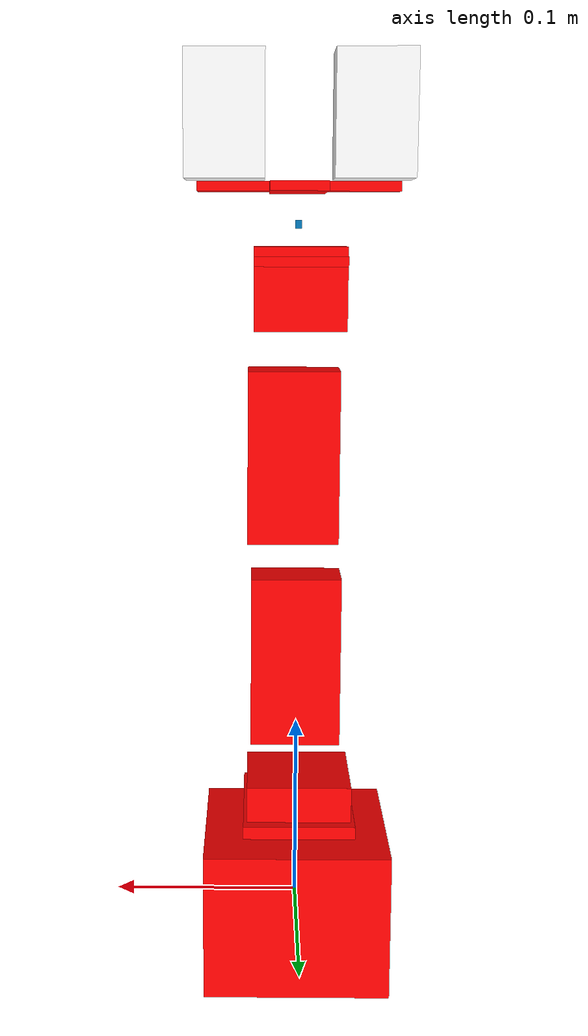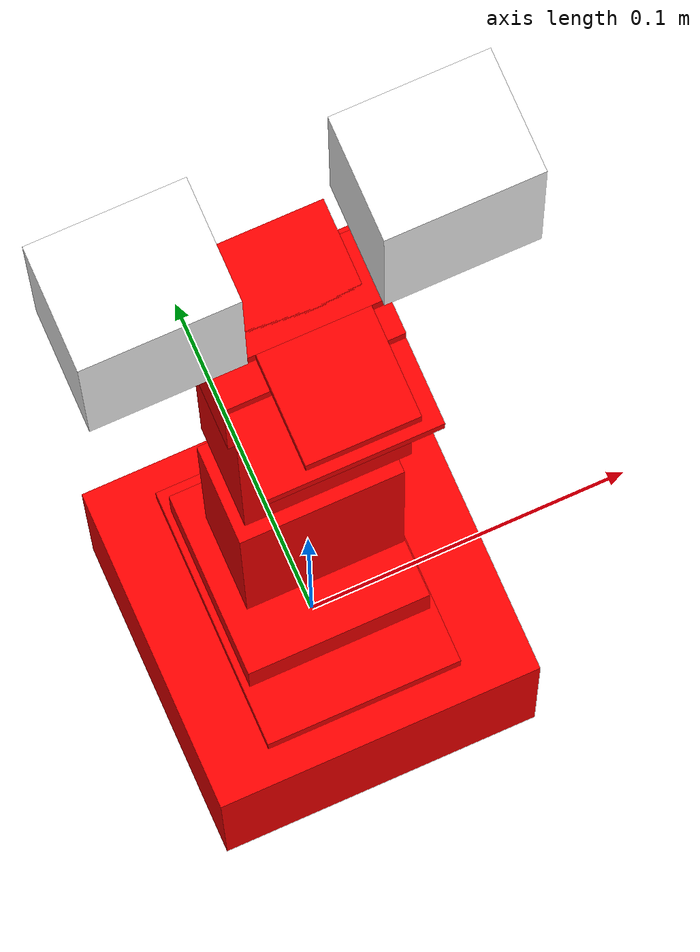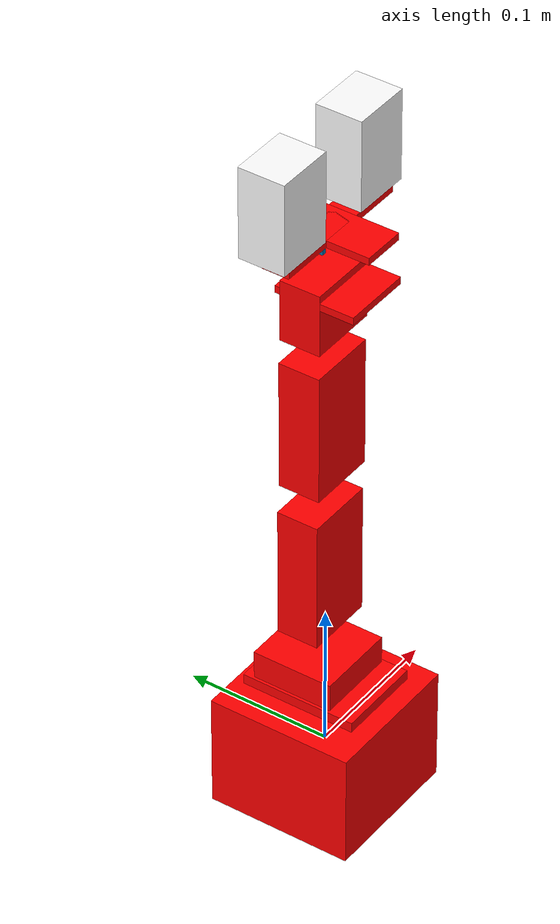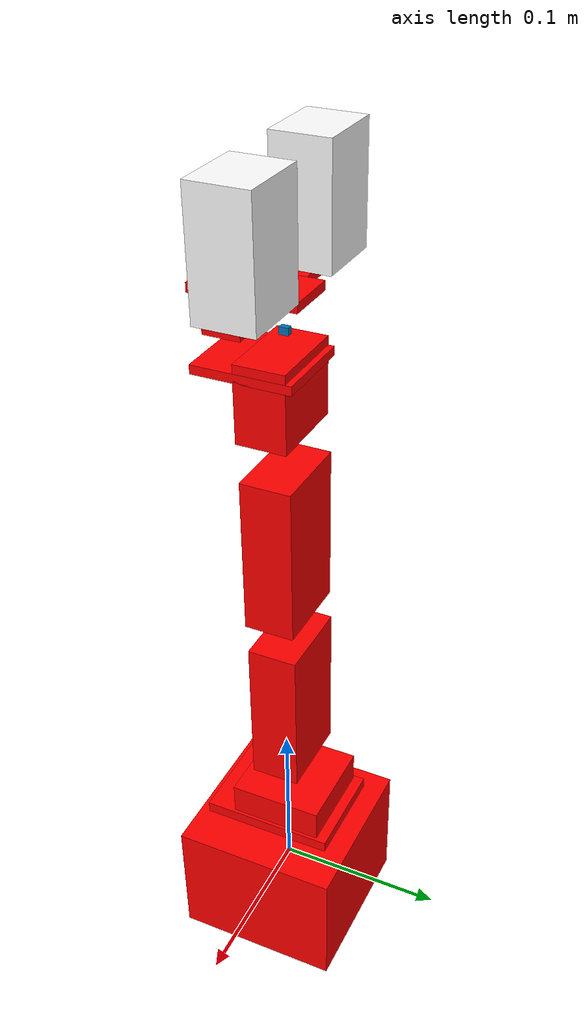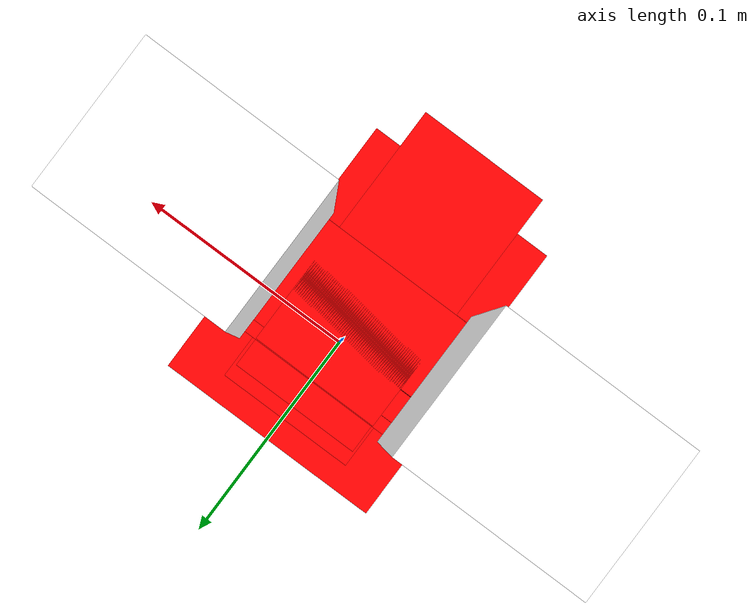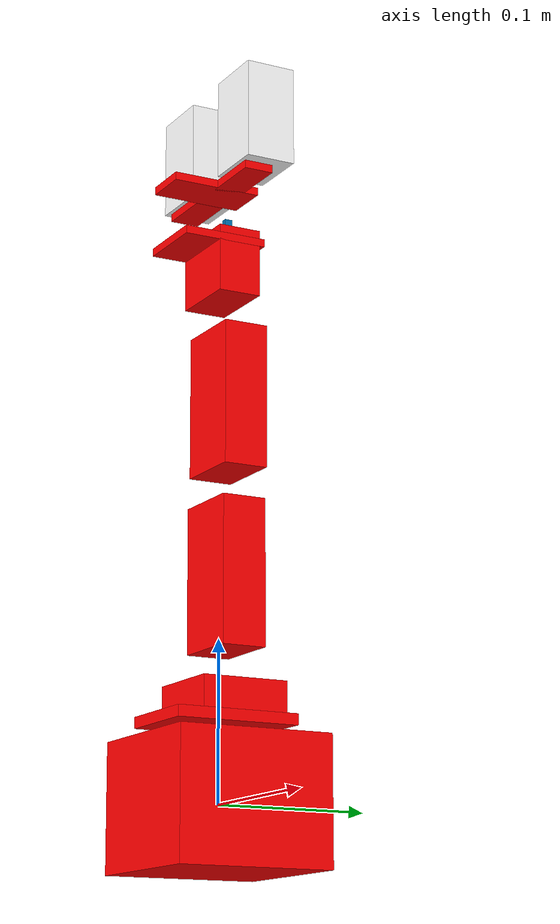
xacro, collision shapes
<?xml version="1.0"?>

<robot xmlns:xacro="http://www.ros.org/wiki/xacro" name="arm">

  <xacro:include filename="$(find arm_description)/urdf/arm_hardware_interface.xacro" />
  <xacro:include filename="$(find arm_gazebo)/urdf/arm_camera.xacro" />

  <material name="red">
    <color rgba="1 0 0 1"/>
  </material>
    <material name="white">
    <color rgba="1 1 1 1"/>
  </material>

 <link name="base_link">
    <visual>
      <geometry>
        <mesh filename="package://arm_description/meshes/base_link.stl" scale="0.001 0.001 0.001"/>
      </geometry>
      <origin rpy="0 0 0" xyz="0 0 0"/>
      <material name="red"/>
    </visual>
    <collision>
      <geometry>
        <box size = "0.1 0.1 0.08" />
      </geometry>
      <origin rpy="0 0 0" xyz="0 0 0"/>
    </collision>
    <inertial>
      <mass value="0.1"/>
      <inertia ixx="1.06682889e+08" ixy="0.0" ixz="0.0" iyy="9.92165844e+07" iyz="0.0" izz="1.26939175e+08"/>
    </inertial>
  </link>

  <joint name="base_1_2" type="fixed">
    <parent link="base_link"/>
    <child link="base_turn"/>
    <origin xyz="-0.0011 -0.011 0.05"/>
  </joint>

  <link name="base_turn">
    <visual>
      <geometry>
        <mesh filename="package://arm_description/meshes/base_turn.stl" scale="0.001 0.001 0.001"/>
      </geometry>
      <origin rpy="0 0 0" xyz="0 0 0"/>
      <material name="red"/>
    </visual>
    <collision>
      <geometry>
        <box size = "0.06 0.08 0.007" />
        </geometry>
      <origin rpy="0 0 0" xyz="0 0.01 0"/>
    </collision>
    <inertial>
      <mass value="0.1"/>
      <inertia ixx="1.35223008e+07" ixy="0.0" ixz="0.0" iyy="8.13814925e+06" iyz="0.0" izz="2.14903814e+07"/>
    </inertial>
  </link>

  <joint name="j0" type="revolute">
    <parent link="base_turn"/>
    <child link="base_turn_rot"/>
    <origin xyz="-0.0 0.0155 0.013" rpy = "0 0 -1.57"/>
    <axis xyz="0 0 1" />
    <limit effort="300" velocity="0.1" lower="-2.57" upper="2.57"/>
  </joint>

  <link name="base_turn_rot">
    <visual>
      <geometry>
        <mesh filename="package://arm_description/meshes/base_turn_table_rot.stl" scale="0.001 0.001 0.001"/>
      </geometry>
      <material name="red"/>
    </visual>
    <collision>
      <geometry>
          <box size = "0.056 0.056 0.02" />
        </geometry>
      <origin rpy="0 0 0" xyz="0 0 0"/>
    </collision>

    <inertial>
      <mass value="0.1"/>
      <inertia ixx="0.001" ixy="0.0" ixz="0.0" iyy="0.001" iyz="0.0" izz="0.001"/>
    </inertial>
  </link>

  <joint name="base_turn_rot_dyn2" type="fixed">
    <parent link="base_turn_rot"/>
    <child link="dyn2"/>
    <origin xyz="0 0 0.0385" rpy="0 1.57 1.57 "/>
  </joint>

  <link name="dyn2">
    <visual>
      <geometry>
        <mesh filename="package://arm_description/meshes/dyn.stl" scale="0.01 0.01 0.01"/>
      </geometry>

      <origin rpy="0 0 0" xyz="0 0 0"/>
    </visual>
    <collision>
      <geometry>
          <box size = "0.005 0.0032 0.004" />
        </geometry>
      <origin rpy="0 0 0" xyz="0 0 0"/>
    </collision>
     <inertial>
      <mass value="0.1"/>
      <inertia ixx="6.90013881e-05" ixy="0.0" ixz="0.0" iyy="1.24554875e-04" iyz="0.0" izz="1.04295793e-04"/>
    </inertial>
  </link>

  <joint name="j1" type="revolute">
    <parent link="dyn2"/>
    <child link="dyn2_r"/>
    <origin xyz="0 0 0.0" rpy="0 0 0"/>
    <axis xyz="0 0 1" />
    <limit effort="300" velocity="0.1" lower="-3.14" upper="3.14"/>
  </joint>

  <link name="dyn2_r">

  </link>

  <joint name="dyn2_f4" type="fixed">
    <parent link="dyn2_r"/>
    <child link="f4"/>
    <origin xyz="-0.047 0.0 -0.003" rpy="0 1.57 1.57"/>
  </joint>

  <link name="f4">
    <visual>
      <geometry>
        <mesh filename="package://arm_description/meshes/f4_n_f3.stl" scale="0.001 0.001 0.001"/>
      </geometry>
      <origin rpy="0 0 0" xyz="0 0 0"/>
      <material name="red"/>
    </visual>
    <collision>
      <geometry>
           <box size = "0.048 0.092 0.0287" />
        </geometry>
      <origin rpy="0 0 0" xyz="-0.005 -0.01 0"/>
    </collision>
     <inertial>
      <mass value="0.1"/>
      <inertia ixx="6.90013881e-05" ixy="0.0" ixz="0.0" iyy="1.24554875e-04" iyz="0.0" izz="1.04295793e-04"/>
    </inertial>
  </link>

  <joint name="d4_dyn3" type="fixed">
    <parent link="f4"/>
    <child link="dyn3"/>
    <origin xyz="-0.004 0.0645 0 " rpy="-1.57 3.14 1.57"/>
  </joint>

  <link name="dyn3">
    <visual>
      <geometry>
        <mesh filename="package://arm_description/meshes/dyn.stl" scale="0.01 0.01 0.01"/>
      </geometry>
      <origin rpy="0 0 0" xyz="0 0 0"/>
    </visual>
    <collision>
      <geometry>
          <box size = "0.005 0.004 0.004" />
        </geometry>
      <origin rpy="0 0 0" xyz="0 0 0"/>
    </collision>
     <inertial>
      <mass value="0.1"/>
      <inertia ixx="6.90013881e-05" ixy="0.0" ixz="0.0" iyy="1.24554875e-04" iyz="0.0" izz="1.04295793e-04"/>
    </inertial>
  </link>

  <joint name="j2" type="revolute">
    <parent link="dyn3"/>
    <child link="dyn3_r"/>
    <origin xyz="0 0 0.0" rpy="0 0 0"/>
    <axis xyz="0 0 1" />
    <limit effort="300" velocity="0.1" lower="-3.14" upper="3.14"/>
  </joint>

 <link name="dyn3_r">

  </link>

  <joint name="dyn3_f5" type="fixed">
    <parent link="dyn3_r"/>
    <child link="f5"/>
    <origin xyz="-0.046 -0.0 -0.002" rpy="1.57 1.57 3.1415 "/>
  </joint>

  <link name="f5">
    <visual>
      <geometry>
        <mesh filename="package://arm_description/meshes/f4_n_f3.stl" scale="0.001 0.001 0.001"/>
      </geometry>
      <origin rpy="0 0 0" xyz="0 0 0"/>
      <material name="red"/>
    </visual>
    <collision>
      <geometry>
        <box size = "0.048 0.091 0.0286" />
        </geometry>
      <origin rpy="0 0 0" xyz="-0.005 -0.01 0"/>
    </collision>

    <inertial>
      <mass value="0.1"/>
  <inertia ixx="0.001" ixy="0.0" ixz="0.0" iyy="0.001" iyz="0.0" izz="0.001"/>    </inertial>
  </link>

  <joint name="f5_dyn4" type="fixed">
    <parent link="f5"/>
    <child link="dyn4"/>
    <origin xyz="-0.004 0.065 -0.0" rpy="-1.57 3.1415 1.57 "/>
  </joint>

  <link name="dyn4">
    <visual>
      <geometry>
        <mesh filename="package://arm_description/meshes/dyn.stl" scale="0.01 0.01 0.01"/>
      </geometry>

      <origin rpy="0 0 0" xyz="0 0 0"/>
    </visual>
    <collision>
      <geometry>
          <box size = "0.005 0.004 0.004" />
        </geometry>
      <origin rpy="0 0 0" xyz="0 0 0"/>
    </collision>

    <inertial>
      <mass value="0.1"/>
      <inertia ixx="6.90013881e-05" ixy="0.0" ixz="0.0" iyy="1.24554875e-04" iyz="0.0" izz="1.04295793e-04"/>
    </inertial>
  </link>

  <joint name="j3" type="revolute">
    <parent link="dyn4"/>
    <child link="dyn4_r"/>
    <origin xyz="0 0 0.0" rpy="0 0 0"/>
    <axis xyz="0 0 1" />
    <limit effort="300" velocity="0.1" lower="-3.14" upper="3.14"/>
  </joint>

  <link name="dyn4_r">

  </link>

  <joint name="f5_wrist" type="fixed">
    <parent link="dyn4_r"/>
    <child link="wrist"/>
    <origin xyz="-0.017 -0.013 0.003" rpy="1.57 1.57 -1.57"/>
  </joint>

  <link name="wrist">
    <visual>
      <geometry>
        <mesh filename="package://arm_description/meshes/wrist.stl" scale="0.001 0.001 0.001"/>
      </geometry>
      <origin rpy="0 0 0" xyz="0 0 0"/>
      <material name="red"/>
    </visual>
    <collision>
      <geometry>
       <box size = "0.0482 0.0547 0.005" />
      </geometry>
      <origin rpy="0 0 0" xyz="0.005 0 0.009"/>
    </collision>

    <collision>
      <geometry>
       <box size = "0.0482 0.028 0.0429" />
      </geometry>
      <origin rpy="0 0 0" xyz="0.005 -0.01 -0.005"/>
    </collision>

     <inertial>
      <mass value="0.1"/>
      <inertia ixx="6.90013881e-05" ixy="0.0" ixz="0.0" iyy="1.24554875e-04" iyz="0.0" izz="1.04295793e-04"/>
    </inertial>
  </link>

  <joint name="wrist_dyn5" type="fixed">
    <parent link="wrist"/>
    <child link="dyn5"/>
    <origin xyz="0.0038 -0.013 0.0275" rpy="0 0 1.57"/>
  </joint>

    <link name="dyn5">
    <visual>
      <geometry>
        <mesh filename="package://arm_description/meshes/dyn.stl" scale="0.01 0.01 0.01"/>
      </geometry>
      <origin rpy="0 0 0" xyz="0 0 0"/>
    </visual>
    <collision>
      <geometry>
        <box size = "0.005 0.0032 0.004" />
        </geometry>
      <origin rpy="0 0 0" xyz="0 0 0"/>
    </collision>

    <inertial>
      <mass value="0.1"/>
      <inertia ixx="6.90013881e-05" ixy="0.0" ixz="0.0" iyy="1.24554875e-04" iyz="0.0" izz="1.04295793e-04"/>
    </inertial>
  </link>

  <joint name="dyn5_dyn5_r" type="fixed">
    <parent link="dyn5"/>
    <child link="dyn5_r"/>
    <origin xyz="0 0 0.0" rpy="0 0 0"/>
    <axis xyz="0 0 1" />
    <limit effort="300" velocity="0.1" lower="-3.14" upper="3.14"/>
  </joint>

  <link name="dyn5_r">

  </link>

  <joint name="wrist_rotate_dyn5" type="fixed">
    <parent link="dyn5_r"/>
    <child link="crawer_base"/>
    <origin xyz="0.015 0 0.019" rpy="0 0 1.57"/>
  </joint>

  <link name="crawer_base">
    <visual>
      <geometry>
        <mesh filename="package://arm_description/meshes/the_crawer_base.stl" scale="0.001 0.001 0.001"/>
      </geometry>
      <origin rpy="0 0 0" xyz="0 0 0"/>
      <material name="red"/>
    </visual>
    <collision>
      <geometry>
          <box size = "0.104 0.019 0.005" />
        </geometry>
      <origin rpy="0 0 0" xyz="0 0.01 0"/>
    </collision>

    <collision>
      <geometry>
          <box size = "0.03 0.058 0.005" />
        </geometry>
      <origin rpy="0 0 0" xyz="0 0 0"/>
    </collision>

    <inertial>
      <mass value="0.1"/>
      <inertia ixx="6.90013881e-05" ixy="0.0" ixz="0.0" iyy="1.24554875e-04" iyz="0.0" izz="1.04295793e-04"/>
    </inertial>
  </link>

  <joint name="crawer_base_crawer_left" type="fixed">
    <parent link="crawer_base"/>
    <child link="crawer_left"/>
    <origin xyz="-0.03 0.015 0.01" rpy="0 -1.57 0"/>
  </joint>

  <link name="crawer_left">
    <visual>
      <geometry>
        <mesh filename="package://arm_description/meshes/the_crawer.stl" scale="0.001 0.001 0.001"/>
      </geometry>
      <origin rpy="0 0 0" xyz="0 0 0"/>
      <material name="white">
        <color rgba="1 1 1 1"/>
      </material>
    </visual>
    <collision>
      <geometry>
          <box size = "0.0629 0.032 0.0408" />
        </geometry>
      <origin rpy="0 0 0" xyz="0.025 0 0.008"/>
    </collision>

    <inertial>
      <mass value="0.1"/>
      <inertia ixx="6.90013881e-05" ixy="0.0" ixz="0.0" iyy="1.24554875e-04" iyz="0.0" izz="1.04295793e-04"/>
    </inertial>
  </link>

  <joint name="crawer_base_crawer_right" type="fixed">
    <parent link="crawer_base"/>
    <child link="crawer_right"/>
    <origin xyz="0.03 0.015 0.01" rpy="3.1415 -1.57 0"/>
  </joint>

  <link name="crawer_right">
    <visual>
      <geometry>
        <mesh filename="package://arm_description/meshes/the_crawer.stl" scale="0.001 0.001 0.001"/>
      </geometry>
      <origin rpy="0 0 0" xyz="0 0 0"/>
      <material name="white">
        <color rgba="1 1 1 1"/>
      </material>
    </visual>
    <collision>
      <geometry>
          <box size = "0.0629 0.032 0.0408" />
        </geometry>
      <origin rpy="0 0 0" xyz="0.025 0 0.008"/>
    </collision>

    <inertial>
      <mass value="0.1"/>
      <inertia ixx="6.90013881e-05" ixy="0.0" ixz="0.0" iyy="1.24554875e-04" iyz="0.0" izz="1.04295793e-04"/>
    </inertial>
  </link>

  <joint name="camera_joint" type="fixed">
      <parent link="base_link"/>
      <child link="camera_link"/>
      <origin xyz="0.0 0.00015 0.015" />
  </joint>

  <link name="camera_link">
      <visual>
          <geometry>
              <box size="0.01 0.01 0.01"/>
          </geometry>
          <material name="white"/>
      </visual>
  </link>

  <xacro:arg name = "j0_pos" default="0.0"/>
  <xacro:arg name = "j1_pos" default="0.0"/>
  <xacro:arg name = "j2_pos" default="0.0"/>
  <xacro:arg name = "j3_pos" default="0.0"/>

  <ros2_control name="HardwareInterface_Ignition" type = "system">
      <hardware>
          <plugin>ign_ros2_control/IgnitionSystem</plugin>
      </hardware>

      <xacro:PositionJointInterface name="j0" initial_pos="$(arg j0_pos)"/>
      <xacro:PositionJointInterface name="j1" initial_pos="$(arg j1_pos)"/>
      <xacro:PositionJointInterface name="j2" initial_pos="$(arg j2_pos)"/>
      <xacro:PositionJointInterface name="j3" initial_pos="$(arg j3_pos)"/>

  </ros2_control>

  <gazebo>
      <plugin filename="gz-sim-sensors-system"
	   name="gz::sim::systems::Sensors">
	       <render_engine>ogre2</render_engine>
      </plugin>
  </gazebo>

  <xacro:arm_camera link = "camera_link" />

    <gazebo>
      <plugin filename="ign_ros2_control-system" name="ign_ros2_control::IgnitionROS2ControlPlugin">
      <parameters>$(find arm_control)/config/arm_control.yaml</parameters>
        <controller_manager_prefix_node_name>controller_manager</controller_manager_prefix_node_name>
      </plugin>
    </gazebo>

</robot>
